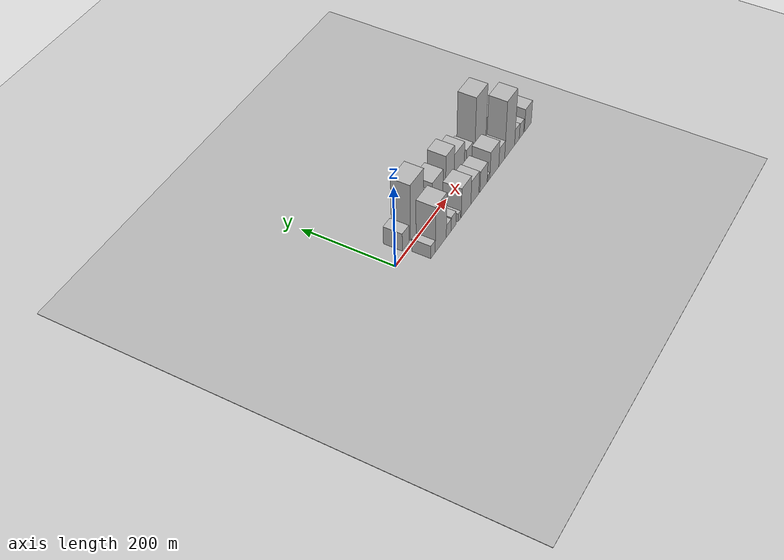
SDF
<?xml version="1.0" encoding="utf-8"?>

<sdf version="1.6">

   <world name="default">

      <gui fullscreen="0">

         <camera name="user_camera">

            <pose>-15 0 4.57585 0 0 0</pose>

            <view_controller>orbit</view_controller>

         </camera>

      </gui>

      <scene>

         <sky>

           <clouds>

             <speed>12</speed>

           </clouds>

         </sky>

         <ambient>0.4 0.4 0.4 1</ambient>

         <background>0.7 0.7 0.7 1</background>

         <shadows>1</shadows>

      </scene>

      <gravity>0 0 -9.8066</gravity>

      <magnetic_field>6e-06 2.3e-05 -4.2e-05</magnetic_field>

      <physics default="0" name="default_physics" type="ode">

         <ode>

            <solver>

               <type>quick</type>

               <iters>10</iters>

               <sor>1.0</sor>

               <use_dynamic_moi_rescaling>0</use_dynamic_moi_rescaling>

            </solver>

            <constraints>

               <cfm>0</cfm>

               <erp>0.2</erp>

               <contact_max_correcting_vel>100</contact_max_correcting_vel>

               <contact_surface_layer>0.001</contact_surface_layer>

            </constraints>

         </ode>

         <max_step_size>0.004</max_step_size>

         <real_time_factor>1</real_time_factor>

         <real_time_update_rate>250</real_time_update_rate>

      </physics>

      <light name="sun" type="directional">

         <cast_shadows>1</cast_shadows>

         <pose>0 0 10 0 0 0</pose>

         <diffuse>0.8 0.8 0.8 1</diffuse>

         <specular>0.2 0.2 0.2 1</specular>

         <attenuation>

            <range>1000</range>

            <constant>0.9</constant>

            <linear>0.01</linear>

            <quadratic>0.001</quadratic>

         </attenuation>

         <direction>-0.5 0.1 -0.9</direction>

      </light>

      <include>

         <name>ground_plane_1</name>

         <uri>model://HANNAS_ground_plane</uri>

         <pose>0 0 0  0 0 0</pose>

      </include>

      <include>

         <name>ground_plane_2</name>

         <uri>model://HANNAS_ground_plane</uri>

         <pose>100 0 0  0 0 0</pose>

      </include>

      <model name="building_1">

         <static>1</static>

         <pose frame="">52.8037 27.5000 0 0.000000 0.000000 1.570796</pose>

         <link name="link">

            <pose frame="">0 0 22.50 0 0 0</pose>

            <collision name="collision">

               <geometry>

                  <box>

                     <size>40.0000 25.6074 45.0000</size>

                  </box>

               </geometry>

               <max_contacts>10</max_contacts>

               <surface>

                  <contact>

                     <ode/>

                  </contact>

                  <bounce/>

                  <friction>

                     <torsional>

                        <ode/>

                     </torsional>

                     <ode/>

                  </friction>

               </surface>

            </collision>

            <visual name="visual">

               <cast_shadows>0</cast_shadows>

               <geometry>

                  <box>

                     <size>40.0000 25.6074 45.0000</size>

                  </box>

               </geometry>

               <material>

                  <script>

                     <uri>model://HANNAS_wall/materials/scripts</uri>

                     <uri>model://HANNAS_wall/materials/textures</uri>

                     <name>vrc/HANNAS_wall</name>

                  </script>

               </material>

            </visual>

            <self_collide>0</self_collide>

            <enable_wind>0</enable_wind>

            <kinematic>0</kinematic>

         </link>

      </model>

      <model name="building_2">

         <static>1</static>

         <pose frame="">96.4107 27.5000 0 0.000000 0.000000 1.570796</pose>

         <link name="link">

            <pose frame="">0 0 70.50 0 0 0</pose>

            <collision name="collision">

               <geometry>

                  <box>

                     <size>40.0000 51.6066 141.0000</size>

                  </box>

               </geometry>

               <max_contacts>10</max_contacts>

               <surface>

                  <contact>

                     <ode/>

                  </contact>

                  <bounce/>

                  <friction>

                     <torsional>

                        <ode/>

                     </torsional>

                     <ode/>

                  </friction>

               </surface>

            </collision>

            <visual name="visual">

               <cast_shadows>0</cast_shadows>

               <geometry>

                  <box>

                     <size>40.0000 51.6066 141.0000</size>

                  </box>

               </geometry>

               <material>

                  <script>

                     <uri>model://HANNAS_wall/materials/scripts</uri>

                     <uri>model://HANNAS_wall/materials/textures</uri>

                     <name>vrc/HANNAS_wall</name>

                  </script>

               </material>

            </visual>

            <self_collide>0</self_collide>

            <enable_wind>0</enable_wind>

            <kinematic>0</kinematic>

         </link>

      </model>

      <model name="building_3">

         <static>1</static>

         <pose frame="">141.5109 27.5000 0 0.000000 0.000000 1.570796</pose>

         <link name="link">

            <pose frame="">0 0 28.50 0 0 0</pose>

            <collision name="collision">

               <geometry>

                  <box>

                     <size>40.0000 28.5938 57.0000</size>

                  </box>

               </geometry>

               <max_contacts>10</max_contacts>

               <surface>

                  <contact>

                     <ode/>

                  </contact>

                  <bounce/>

                  <friction>

                     <torsional>

                        <ode/>

                     </torsional>

                     <ode/>

                  </friction>

               </surface>

            </collision>

            <visual name="visual">

               <cast_shadows>0</cast_shadows>

               <geometry>

                  <box>

                     <size>40.0000 28.5938 57.0000</size>

                  </box>

               </geometry>

               <material>

                  <script>

                     <uri>model://HANNAS_wall/materials/scripts</uri>

                     <uri>model://HANNAS_wall/materials/textures</uri>

                     <name>vrc/HANNAS_wall</name>

                  </script>

               </material>

            </visual>

            <self_collide>0</self_collide>

            <enable_wind>0</enable_wind>

            <kinematic>0</kinematic>

         </link>

      </model>

      <model name="building_4">

         <static>1</static>

         <pose frame="">177.8034 27.5000 0 0.000000 0.000000 1.570796</pose>

         <link name="link">

            <pose frame="">0 0 37.50 0 0 0</pose>

            <collision name="collision">

               <geometry>

                  <box>

                     <size>40.0000 43.9912 75.0000</size>

                  </box>

               </geometry>

               <max_contacts>10</max_contacts>

               <surface>

                  <contact>

                     <ode/>

                  </contact>

                  <bounce/>

                  <friction>

                     <torsional>

                        <ode/>

                     </torsional>

                     <ode/>

                  </friction>

               </surface>

            </collision>

            <visual name="visual">

               <cast_shadows>0</cast_shadows>

               <geometry>

                  <box>

                     <size>40.0000 43.9912 75.0000</size>

                  </box>

               </geometry>

               <material>

                  <script>

                     <uri>model://HANNAS_wall/materials/scripts</uri>

                     <uri>model://HANNAS_wall/materials/textures</uri>

                     <name>vrc/HANNAS_wall</name>

                  </script>

               </material>

            </visual>

            <self_collide>0</self_collide>

            <enable_wind>0</enable_wind>

            <kinematic>0</kinematic>

         </link>

      </model>

      <model name="building_5">

         <static>1</static>

         <pose frame="">204.8261 27.5000 0 0.000000 0.000000 1.570796</pose>

         <link name="link">

            <pose frame="">0 0 10.50 0 0 0</pose>

            <collision name="collision">

               <geometry>

                  <box>

                     <size>40.0000 10.0542 21.0000</size>

                  </box>

               </geometry>

               <max_contacts>10</max_contacts>

               <surface>

                  <contact>

                     <ode/>

                  </contact>

                  <bounce/>

                  <friction>

                     <torsional>

                        <ode/>

                     </torsional>

                     <ode/>

                  </friction>

               </surface>

            </collision>

            <visual name="visual">

               <cast_shadows>0</cast_shadows>

               <geometry>

                  <box>

                     <size>40.0000 10.0542 21.0000</size>

                  </box>

               </geometry>

               <material>

                  <script>

                     <uri>model://HANNAS_wall/materials/scripts</uri>

                     <uri>model://HANNAS_wall/materials/textures</uri>

                     <name>vrc/HANNAS_wall</name>

                  </script>

               </material>

            </visual>

            <self_collide>0</self_collide>

            <enable_wind>0</enable_wind>

            <kinematic>0</kinematic>

         </link>

      </model>

      <model name="building_6">

         <static>1</static>

         <pose frame="">227.4431 27.5000 0 0.000000 0.000000 1.570796</pose>

         <link name="link">

            <pose frame="">0 0 49.50 0 0 0</pose>

            <collision name="collision">

               <geometry>

                  <box>

                     <size>40.0000 35.1797 99.0000</size>

                  </box>

               </geometry>

               <max_contacts>10</max_contacts>

               <surface>

                  <contact>

                     <ode/>

                  </contact>

                  <bounce/>

                  <friction>

                     <torsional>

                        <ode/>

                     </torsional>

                     <ode/>

                  </friction>

               </surface>

            </collision>

            <visual name="visual">

               <cast_shadows>0</cast_shadows>

               <geometry>

                  <box>

                     <size>40.0000 35.1797 99.0000</size>

                  </box>

               </geometry>

               <material>

                  <script>

                     <uri>model://HANNAS_wall/materials/scripts</uri>

                     <uri>model://HANNAS_wall/materials/textures</uri>

                     <name>vrc/HANNAS_wall</name>

                  </script>

               </material>

            </visual>

            <self_collide>0</self_collide>

            <enable_wind>0</enable_wind>

            <kinematic>0</kinematic>

         </link>

      </model>

      <model name="building_7">

         <static>1</static>

         <pose frame="">266.3292 27.5000 0 0.000000 0.000000 1.570796</pose>

         <link name="link">

            <pose frame="">0 0 37.50 0 0 0</pose>

            <collision name="collision">

               <geometry>

                  <box>

                     <size>40.0000 42.5926 75.0000</size>

                  </box>

               </geometry>

               <max_contacts>10</max_contacts>

               <surface>

                  <contact>

                     <ode/>

                  </contact>

                  <bounce/>

                  <friction>

                     <torsional>

                        <ode/>

                     </torsional>

                     <ode/>

                  </friction>

               </surface>

            </collision>

            <visual name="visual">

               <cast_shadows>0</cast_shadows>

               <geometry>

                  <box>

                     <size>40.0000 42.5926 75.0000</size>

                  </box>

               </geometry>

               <material>

                  <script>

                     <uri>model://HANNAS_wall/materials/scripts</uri>

                     <uri>model://HANNAS_wall/materials/textures</uri>

                     <name>vrc/HANNAS_wall</name>

                  </script>

               </material>

            </visual>

            <self_collide>0</self_collide>

            <enable_wind>0</enable_wind>

            <kinematic>0</kinematic>

         </link>

      </model>

      <model name="building_8">

         <static>1</static>

         <pose frame="">310.1214 27.5000 0 0.000000 0.000000 1.570796</pose>

         <link name="link">

            <pose frame="">0 0 22.50 0 0 0</pose>

            <collision name="collision">

               <geometry>

                  <box>

                     <size>40.0000 26.9918 45.0000</size>

                  </box>

               </geometry>

               <max_contacts>10</max_contacts>

               <surface>

                  <contact>

                     <ode/>

                  </contact>

                  <bounce/>

                  <friction>

                     <torsional>

                        <ode/>

                     </torsional>

                     <ode/>

                  </friction>

               </surface>

            </collision>

            <visual name="visual">

               <cast_shadows>0</cast_shadows>

               <geometry>

                  <box>

                     <size>40.0000 26.9918 45.0000</size>

                  </box>

               </geometry>

               <material>

                  <script>

                     <uri>model://HANNAS_wall/materials/scripts</uri>

                     <uri>model://HANNAS_wall/materials/textures</uri>

                     <name>vrc/HANNAS_wall</name>

                  </script>

               </material>

            </visual>

            <self_collide>0</self_collide>

            <enable_wind>0</enable_wind>

            <kinematic>0</kinematic>

         </link>

      </model>

      <model name="building_9">

         <static>1</static>

         <pose frame="">356.7437 27.5000 0 0.000000 0.000000 1.570796</pose>

         <link name="link">

            <pose frame="">0 0 75.00 0 0 0</pose>

            <collision name="collision">

               <geometry>

                  <box>

                     <size>40.0000 48.2527 150.0000</size>

                  </box>

               </geometry>

               <max_contacts>10</max_contacts>

               <surface>

                  <contact>

                     <ode/>

                  </contact>

                  <bounce/>

                  <friction>

                     <torsional>

                        <ode/>

                     </torsional>

                     <ode/>

                  </friction>

               </surface>

            </collision>

            <visual name="visual">

               <cast_shadows>0</cast_shadows>

               <geometry>

                  <box>

                     <size>40.0000 48.2527 150.0000</size>

                  </box>

               </geometry>

               <material>

                  <script>

                     <uri>model://HANNAS_wall/materials/scripts</uri>

                     <uri>model://HANNAS_wall/materials/textures</uri>

                     <name>vrc/HANNAS_wall</name>

                  </script>

               </material>

            </visual>

            <self_collide>0</self_collide>

            <enable_wind>0</enable_wind>

            <kinematic>0</kinematic>

         </link>

      </model>

      <model name="building_10">

         <static>1</static>

         <pose frame="">399.2477 27.5000 0 0.000000 0.000000 1.570796</pose>

         <link name="link">

            <pose frame="">0 0 31.50 0 0 0</pose>

            <collision name="collision">

               <geometry>

                  <box>

                     <size>40.0000 36.7554 63.0000</size>

                  </box>

               </geometry>

               <max_contacts>10</max_contacts>

               <surface>

                  <contact>

                     <ode/>

                  </contact>

                  <bounce/>

                  <friction>

                     <torsional>

                        <ode/>

                     </torsional>

                     <ode/>

                  </friction>

               </surface>

            </collision>

            <visual name="visual">

               <cast_shadows>0</cast_shadows>

               <geometry>

                  <box>

                     <size>40.0000 36.7554 63.0000</size>

                  </box>

               </geometry>

               <material>

                  <script>

                     <uri>model://HANNAS_wall/materials/scripts</uri>

                     <uri>model://HANNAS_wall/materials/textures</uri>

                     <name>vrc/HANNAS_wall</name>

                  </script>

               </material>

            </visual>

            <self_collide>0</self_collide>

            <enable_wind>0</enable_wind>

            <kinematic>0</kinematic>

         </link>

      </model>

      <model name="building_11">

         <static>1</static>

         <pose frame="">438.9827 27.5000 0 0.000000 0.000000 1.570796</pose>

         <link name="link">

            <pose frame="">0 0 27.00 0 0 0</pose>

            <collision name="collision">

               <geometry>

                  <box>

                     <size>40.0000 28.7146 54.0000</size>

                  </box>

               </geometry>

               <max_contacts>10</max_contacts>

               <surface>

                  <contact>

                     <ode/>

                  </contact>

                  <bounce/>

                  <friction>

                     <torsional>

                        <ode/>

                     </torsional>

                     <ode/>

                  </friction>

               </surface>

            </collision>

            <visual name="visual">

               <cast_shadows>0</cast_shadows>

               <geometry>

                  <box>

                     <size>40.0000 28.7146 54.0000</size>

                  </box>

               </geometry>

               <material>

                  <script>

                     <uri>model://HANNAS_wall/materials/scripts</uri>

                     <uri>model://HANNAS_wall/materials/textures</uri>

                     <name>vrc/HANNAS_wall</name>

                  </script>

               </material>

            </visual>

            <self_collide>0</self_collide>

            <enable_wind>0</enable_wind>

            <kinematic>0</kinematic>

         </link>

      </model>

      <model name="building_12">

         <static>1</static>

         <pose frame="">56.5332 -27.5000 0 0.000000 0.000000 1.570796</pose>

         <link name="link">

            <pose frame="">0 0 16.50 0 0 0</pose>

            <collision name="collision">

               <geometry>

                  <box>

                     <size>40.0000 17.0663 33.0000</size>

                  </box>

               </geometry>

               <max_contacts>10</max_contacts>

               <surface>

                  <contact>

                     <ode/>

                  </contact>

                  <bounce/>

                  <friction>

                     <torsional>

                        <ode/>

                     </torsional>

                     <ode/>

                  </friction>

               </surface>

            </collision>

            <visual name="visual">

               <cast_shadows>0</cast_shadows>

               <geometry>

                  <box>

                     <size>40.0000 17.0663 33.0000</size>

                  </box>

               </geometry>

               <material>

                  <script>

                     <uri>model://HANNAS_wall/materials/scripts</uri>

                     <uri>model://HANNAS_wall/materials/textures</uri>

                     <name>vrc/HANNAS_wall</name>

                  </script>

               </material>

            </visual>

            <self_collide>0</self_collide>

            <enable_wind>0</enable_wind>

            <kinematic>0</kinematic>

         </link>

      </model>

      <model name="building_13">

         <static>1</static>

         <pose frame="">86.7587 -27.5000 0 0.000000 0.000000 1.570796</pose>

         <link name="link">

            <pose frame="">0 0 58.50 0 0 0</pose>

            <collision name="collision">

               <geometry>

                  <box>

                     <size>40.0000 43.3846 117.0000</size>

                  </box>

               </geometry>

               <max_contacts>10</max_contacts>

               <surface>

                  <contact>

                     <ode/>

                  </contact>

                  <bounce/>

                  <friction>

                     <torsional>

                        <ode/>

                     </torsional>

                     <ode/>

                  </friction>

               </surface>

            </collision>

            <visual name="visual">

               <cast_shadows>0</cast_shadows>

               <geometry>

                  <box>

                     <size>40.0000 43.3846 117.0000</size>

                  </box>

               </geometry>

               <material>

                  <script>

                     <uri>model://HANNAS_wall/materials/scripts</uri>

                     <uri>model://HANNAS_wall/materials/textures</uri>

                     <name>vrc/HANNAS_wall</name>

                  </script>

               </material>

            </visual>

            <self_collide>0</self_collide>

            <enable_wind>0</enable_wind>

            <kinematic>0</kinematic>

         </link>

      </model>

      <model name="building_14">

         <static>1</static>

         <pose frame="">118.2352 -27.5000 0 0.000000 0.000000 1.570796</pose>

         <link name="link">

            <pose frame="">0 0 16.50 0 0 0</pose>

            <collision name="collision">

               <geometry>

                  <box>

                     <size>40.0000 19.5684 33.0000</size>

                  </box>

               </geometry>

               <max_contacts>10</max_contacts>

               <surface>

                  <contact>

                     <ode/>

                  </contact>

                  <bounce/>

                  <friction>

                     <torsional>

                        <ode/>

                     </torsional>

                     <ode/>

                  </friction>

               </surface>

            </collision>

            <visual name="visual">

               <cast_shadows>0</cast_shadows>

               <geometry>

                  <box>

                     <size>40.0000 19.5684 33.0000</size>

                  </box>

               </geometry>

               <material>

                  <script>

                     <uri>model://HANNAS_wall/materials/scripts</uri>

                     <uri>model://HANNAS_wall/materials/textures</uri>

                     <name>vrc/HANNAS_wall</name>

                  </script>

               </material>

            </visual>

            <self_collide>0</self_collide>

            <enable_wind>0</enable_wind>

            <kinematic>0</kinematic>

         </link>

      </model>

      <model name="building_15">

         <static>1</static>

         <pose frame="">137.5654 -27.5000 0 0.000000 0.000000 1.570796</pose>

         <link name="link">

            <pose frame="">0 0 18.00 0 0 0</pose>

            <collision name="collision">

               <geometry>

                  <box>

                     <size>40.0000 19.0920 36.0000</size>

                  </box>

               </geometry>

               <max_contacts>10</max_contacts>

               <surface>

                  <contact>

                     <ode/>

                  </contact>

                  <bounce/>

                  <friction>

                     <torsional>

                        <ode/>

                     </torsional>

                     <ode/>

                  </friction>

               </surface>

            </collision>

            <visual name="visual">

               <cast_shadows>0</cast_shadows>

               <geometry>

                  <box>

                     <size>40.0000 19.0920 36.0000</size>

                  </box>

               </geometry>

               <material>

                  <script>

                     <uri>model://HANNAS_wall/materials/scripts</uri>

                     <uri>model://HANNAS_wall/materials/textures</uri>

                     <name>vrc/HANNAS_wall</name>

                  </script>

               </material>

            </visual>

            <self_collide>0</self_collide>

            <enable_wind>0</enable_wind>

            <kinematic>0</kinematic>

         </link>

      </model>

      <model name="building_16">

         <static>1</static>

         <pose frame="">161.0348 -27.5000 0 0.000000 0.000000 1.570796</pose>

         <link name="link">

            <pose frame="">0 0 10.50 0 0 0</pose>

            <collision name="collision">

               <geometry>

                  <box>

                     <size>40.0000 9.8466 21.0000</size>

                  </box>

               </geometry>

               <max_contacts>10</max_contacts>

               <surface>

                  <contact>

                     <ode/>

                  </contact>

                  <bounce/>

                  <friction>

                     <torsional>

                        <ode/>

                     </torsional>

                     <ode/>

                  </friction>

               </surface>

            </collision>

            <visual name="visual">

               <cast_shadows>0</cast_shadows>

               <geometry>

                  <box>

                     <size>40.0000 9.8466 21.0000</size>

                  </box>

               </geometry>

               <material>

                  <script>

                     <uri>model://HANNAS_wall/materials/scripts</uri>

                     <uri>model://HANNAS_wall/materials/textures</uri>

                     <name>vrc/HANNAS_wall</name>

                  </script>

               </material>

            </visual>

            <self_collide>0</self_collide>

            <enable_wind>0</enable_wind>

            <kinematic>0</kinematic>

         </link>

      </model>

      <model name="building_17">

         <static>1</static>

         <pose frame="">188.8325 -27.5000 0 0.000000 0.000000 1.570796</pose>

         <link name="link">

            <pose frame="">0 0 37.50 0 0 0</pose>

            <collision name="collision">

               <geometry>

                  <box>

                     <size>40.0000 39.7489 75.0000</size>

                  </box>

               </geometry>

               <max_contacts>10</max_contacts>

               <surface>

                  <contact>

                     <ode/>

                  </contact>

                  <bounce/>

                  <friction>

                     <torsional>

                        <ode/>

                     </torsional>

                     <ode/>

                  </friction>

               </surface>

            </collision>

            <visual name="visual">

               <cast_shadows>0</cast_shadows>

               <geometry>

                  <box>

                     <size>40.0000 39.7489 75.0000</size>

                  </box>

               </geometry>

               <material>

                  <script>

                     <uri>model://HANNAS_wall/materials/scripts</uri>

                     <uri>model://HANNAS_wall/materials/textures</uri>

                     <name>vrc/HANNAS_wall</name>

                  </script>

               </material>

            </visual>

            <self_collide>0</self_collide>

            <enable_wind>0</enable_wind>

            <kinematic>0</kinematic>

         </link>

      </model>

      <model name="building_18">

         <static>1</static>

         <pose frame="">225.2265 -27.5000 0 0.000000 0.000000 1.570796</pose>

         <link name="link">

            <pose frame="">0 0 30.00 0 0 0</pose>

            <collision name="collision">

               <geometry>

                  <box>

                     <size>40.0000 33.0391 60.0000</size>

                  </box>

               </geometry>

               <max_contacts>10</max_contacts>

               <surface>

                  <contact>

                     <ode/>

                  </contact>

                  <bounce/>

                  <friction>

                     <torsional>

                        <ode/>

                     </torsional>

                     <ode/>

                  </friction>

               </surface>

            </collision>

            <visual name="visual">

               <cast_shadows>0</cast_shadows>

               <geometry>

                  <box>

                     <size>40.0000 33.0391 60.0000</size>

                  </box>

               </geometry>

               <material>

                  <script>

                     <uri>model://HANNAS_wall/materials/scripts</uri>

                     <uri>model://HANNAS_wall/materials/textures</uri>

                     <name>vrc/HANNAS_wall</name>

                  </script>

               </material>

            </visual>

            <self_collide>0</self_collide>

            <enable_wind>0</enable_wind>

            <kinematic>0</kinematic>

         </link>

      </model>

      <model name="building_19">

         <static>1</static>

         <pose frame="">262.1121 -27.5000 0 0.000000 0.000000 1.570796</pose>

         <link name="link">

            <pose frame="">0 0 27.00 0 0 0</pose>

            <collision name="collision">

               <geometry>

                  <box>

                     <size>40.0000 30.7320 54.0000</size>

                  </box>

               </geometry>

               <max_contacts>10</max_contacts>

               <surface>

                  <contact>

                     <ode/>

                  </contact>

                  <bounce/>

                  <friction>

                     <torsional>

                        <ode/>

                     </torsional>

                     <ode/>

                  </friction>

               </surface>

            </collision>

            <visual name="visual">

               <cast_shadows>0</cast_shadows>

               <geometry>

                  <box>

                     <size>40.0000 30.7320 54.0000</size>

                  </box>

               </geometry>

               <material>

                  <script>

                     <uri>model://HANNAS_wall/materials/scripts</uri>

                     <uri>model://HANNAS_wall/materials/textures</uri>

                     <name>vrc/HANNAS_wall</name>

                  </script>

               </material>

            </visual>

            <self_collide>0</self_collide>

            <enable_wind>0</enable_wind>

            <kinematic>0</kinematic>

         </link>

      </model>

      <model name="building_20">

         <static>1</static>

         <pose frame="">284.6860 -27.5000 0 0.000000 0.000000 1.570796</pose>

         <link name="link">

            <pose frame="">0 0 9.00 0 0 0</pose>

            <collision name="collision">

               <geometry>

                  <box>

                     <size>40.0000 8.4159 18.0000</size>

                  </box>

               </geometry>

               <max_contacts>10</max_contacts>

               <surface>

                  <contact>

                     <ode/>

                  </contact>

                  <bounce/>

                  <friction>

                     <torsional>

                        <ode/>

                     </torsional>

                     <ode/>

                  </friction>

               </surface>

            </collision>

            <visual name="visual">

               <cast_shadows>0</cast_shadows>

               <geometry>

                  <box>

                     <size>40.0000 8.4159 18.0000</size>

                  </box>

               </geometry>

               <material>

                  <script>

                     <uri>model://HANNAS_wall/materials/scripts</uri>

                     <uri>model://HANNAS_wall/materials/textures</uri>

                     <name>vrc/HANNAS_wall</name>

                  </script>

               </material>

            </visual>

            <self_collide>0</self_collide>

            <enable_wind>0</enable_wind>

            <kinematic>0</kinematic>

         </link>

      </model>

      <model name="building_21">

         <static>1</static>

         <pose frame="">308.4489 -27.5000 0 0.000000 0.000000 1.570796</pose>

         <link name="link">

            <pose frame="">0 0 34.50 0 0 0</pose>

            <collision name="collision">

               <geometry>

                  <box>

                     <size>40.0000 39.1099 69.0000</size>

                  </box>

               </geometry>

               <max_contacts>10</max_contacts>

               <surface>

                  <contact>

                     <ode/>

                  </contact>

                  <bounce/>

                  <friction>

                     <torsional>

                        <ode/>

                     </torsional>

                     <ode/>

                  </friction>

               </surface>

            </collision>

            <visual name="visual">

               <cast_shadows>0</cast_shadows>

               <geometry>

                  <box>

                     <size>40.0000 39.1099 69.0000</size>

                  </box>

               </geometry>

               <material>

                  <script>

                     <uri>model://HANNAS_wall/materials/scripts</uri>

                     <uri>model://HANNAS_wall/materials/textures</uri>

                     <name>vrc/HANNAS_wall</name>

                  </script>

               </material>

            </visual>

            <self_collide>0</self_collide>

            <enable_wind>0</enable_wind>

            <kinematic>0</kinematic>

         </link>

      </model>

      <model name="building_22">

         <static>1</static>

         <pose frame="">340.9039 -27.5000 0 0.000000 0.000000 1.570796</pose>

         <link name="link">

            <pose frame="">0 0 24.00 0 0 0</pose>

            <collision name="collision">

               <geometry>

                  <box>

                     <size>40.0000 25.8001 48.0000</size>

                  </box>

               </geometry>

               <max_contacts>10</max_contacts>

               <surface>

                  <contact>

                     <ode/>

                  </contact>

                  <bounce/>

                  <friction>

                     <torsional>

                        <ode/>

                     </torsional>

                     <ode/>

                  </friction>

               </surface>

            </collision>

            <visual name="visual">

               <cast_shadows>0</cast_shadows>

               <geometry>

                  <box>

                     <size>40.0000 25.8001 48.0000</size>

                  </box>

               </geometry>

               <material>

                  <script>

                     <uri>model://HANNAS_wall/materials/scripts</uri>

                     <uri>model://HANNAS_wall/materials/textures</uri>

                     <name>vrc/HANNAS_wall</name>

                  </script>

               </material>

            </visual>

            <self_collide>0</self_collide>

            <enable_wind>0</enable_wind>

            <kinematic>0</kinematic>

         </link>

      </model>

      <model name="building_23">

         <static>1</static>

         <pose frame="">376.1191 -27.5000 0 0.000000 0.000000 1.570796</pose>

         <link name="link">

            <pose frame="">0 0 73.50 0 0 0</pose>

            <collision name="collision">

               <geometry>

                  <box>

                     <size>40.0000 44.6304 147.0000</size>

                  </box>

               </geometry>

               <max_contacts>10</max_contacts>

               <surface>

                  <contact>

                     <ode/>

                  </contact>

                  <bounce/>

                  <friction>

                     <torsional>

                        <ode/>

                     </torsional>

                     <ode/>

                  </friction>

               </surface>

            </collision>

            <visual name="visual">

               <cast_shadows>0</cast_shadows>

               <geometry>

                  <box>

                     <size>40.0000 44.6304 147.0000</size>

                  </box>

               </geometry>

               <material>

                  <script>

                     <uri>model://HANNAS_wall/materials/scripts</uri>

                     <uri>model://HANNAS_wall/materials/textures</uri>

                     <name>vrc/HANNAS_wall</name>

                  </script>

               </material>

            </visual>

            <self_collide>0</self_collide>

            <enable_wind>0</enable_wind>

            <kinematic>0</kinematic>

         </link>

      </model>

      <model name="building_24">

         <static>1</static>

         <pose frame="">409.0027 -27.5000 0 0.000000 0.000000 1.570796</pose>

         <link name="link">

            <pose frame="">0 0 21.00 0 0 0</pose>

            <collision name="collision">

               <geometry>

                  <box>

                     <size>40.0000 21.1367 42.0000</size>

                  </box>

               </geometry>

               <max_contacts>10</max_contacts>

               <surface>

                  <contact>

                     <ode/>

                  </contact>

                  <bounce/>

                  <friction>

                     <torsional>

                        <ode/>

                     </torsional>

                     <ode/>

                  </friction>

               </surface>

            </collision>

            <visual name="visual">

               <cast_shadows>0</cast_shadows>

               <geometry>

                  <box>

                     <size>40.0000 21.1367 42.0000</size>

                  </box>

               </geometry>

               <material>

                  <script>

                     <uri>model://HANNAS_wall/materials/scripts</uri>

                     <uri>model://HANNAS_wall/materials/textures</uri>

                     <name>vrc/HANNAS_wall</name>

                  </script>

               </material>

            </visual>

            <self_collide>0</self_collide>

            <enable_wind>0</enable_wind>

            <kinematic>0</kinematic>

         </link>

      </model>

      <model name="building_25">

         <static>1</static>

         <pose frame="">429.3961 -27.5000 0 0.000000 0.000000 1.570796</pose>

         <link name="link">

            <pose frame="">0 0 19.50 0 0 0</pose>

            <collision name="collision">

               <geometry>

                  <box>

                     <size>40.0000 19.6503 39.0000</size>

                  </box>

               </geometry>

               <max_contacts>10</max_contacts>

               <surface>

                  <contact>

                     <ode/>

                  </contact>

                  <bounce/>

                  <friction>

                     <torsional>

                        <ode/>

                     </torsional>

                     <ode/>

                  </friction>

               </surface>

            </collision>

            <visual name="visual">

               <cast_shadows>0</cast_shadows>

               <geometry>

                  <box>

                     <size>40.0000 19.6503 39.0000</size>

                  </box>

               </geometry>

               <material>

                  <script>

                     <uri>model://HANNAS_wall/materials/scripts</uri>

                     <uri>model://HANNAS_wall/materials/textures</uri>

                     <name>vrc/HANNAS_wall</name>

                  </script>

               </material>

            </visual>

            <self_collide>0</self_collide>

            <enable_wind>0</enable_wind>

            <kinematic>0</kinematic>

         </link>

      </model>

      <model name="building_26">

         <static>1</static>

         <pose frame="">459.1714 -27.5000 0 0.000000 0.000000 1.570796</pose>

         <link name="link">

            <pose frame="">0 0 30.00 0 0 0</pose>

            <collision name="collision">

               <geometry>

                  <box>

                     <size>40.0000 31.9001 60.0000</size>

                  </box>

               </geometry>

               <max_contacts>10</max_contacts>

               <surface>

                  <contact>

                     <ode/>

                  </contact>

                  <bounce/>

                  <friction>

                     <torsional>

                        <ode/>

                     </torsional>

                     <ode/>

                  </friction>

               </surface>

            </collision>

            <visual name="visual">

               <cast_shadows>0</cast_shadows>

               <geometry>

                  <box>

                     <size>40.0000 31.9001 60.0000</size>

                  </box>

               </geometry>

               <material>

                  <script>

                     <uri>model://HANNAS_wall/materials/scripts</uri>

                     <uri>model://HANNAS_wall/materials/textures</uri>

                     <name>vrc/HANNAS_wall</name>

                  </script>

               </material>

            </visual>

            <self_collide>0</self_collide>

            <enable_wind>0</enable_wind>

            <kinematic>0</kinematic>

         </link>

      </model>

   </world>

</sdf>

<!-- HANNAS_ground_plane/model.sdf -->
<sdf version="1.4">
<model name="HANNAS_ground_plane">
  <static>true</static>
    <link name="link">
      <collision name="collision">
        <geometry>
          <plane>
            <normal>0 0 1</normal>
            <size>1000 1000</size>
          </plane>
        </geometry>
        <surface>
          <friction>
            <ode>
              <mu>100</mu>
              <mu2>50</mu2>
            </ode>
          </friction>
        </surface>
      </collision>
      <visual name="visual">
        <cast_shadows>false</cast_shadows>
        <geometry>
          <plane>
            <normal>0 0 1</normal>
            <size>1000 1000</size>
          </plane>
        </geometry>
        <material>
          <script>
            <uri>model://HANNAS_ground_plane/materials/scripts/HANNAS_ground_plane.material</uri>
	    <uri>model://HANNAS_ground_plane/materials/textures</uri>
            <name>HANNASGroundPlane/Image</name>
          </script>
        </material>
      </visual>
    </link>
  </model>
</sdf>
